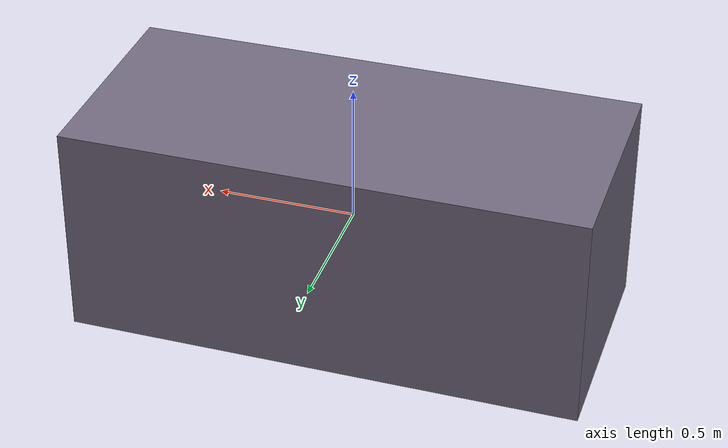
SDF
<?xml version="1.0"?>
<sdf version="1.6">
  <model name="office_couch">
    <static>true</static>
    <link name="link">
      <collision name="col">
        <geometry>
          <box>
            <size>1.85 0.82 0.78</size>
          </box>
        </geometry>
      </collision>
      <visual name="vis">
        <geometry>
          <box>
            <size>1.85 0.82 0.78</size>
          </box>
        </geometry>
        <material>
          <ambient>0.45 0.42 0.5 1</ambient>
          <diffuse>0.45 0.42 0.5 1</diffuse>
        </material>
      </visual>
    </link>
  </model>
</sdf>
